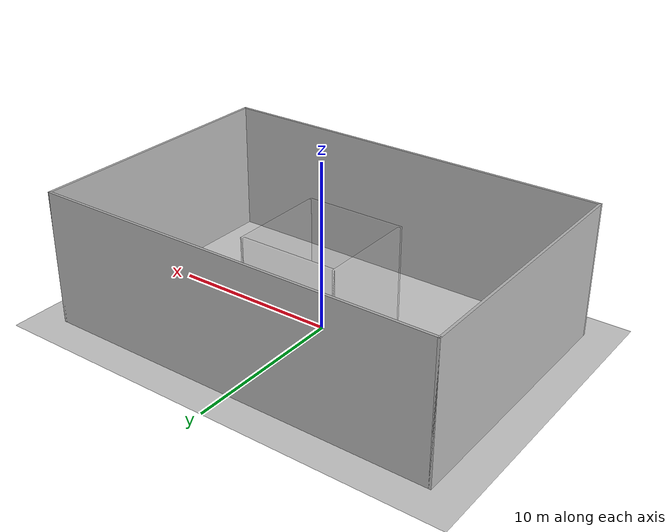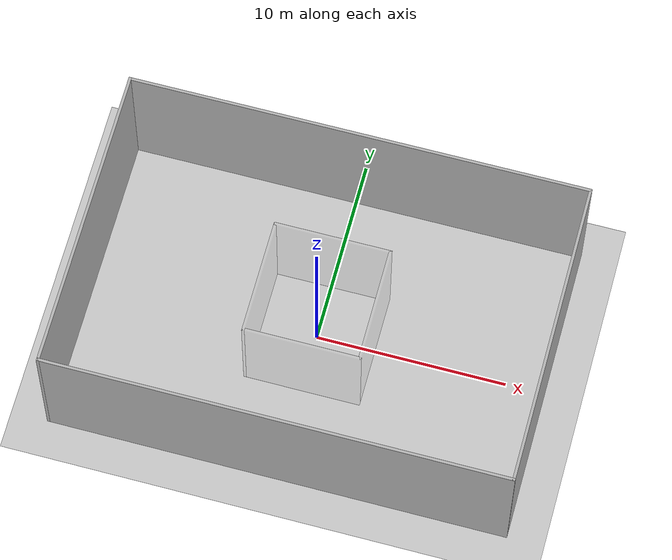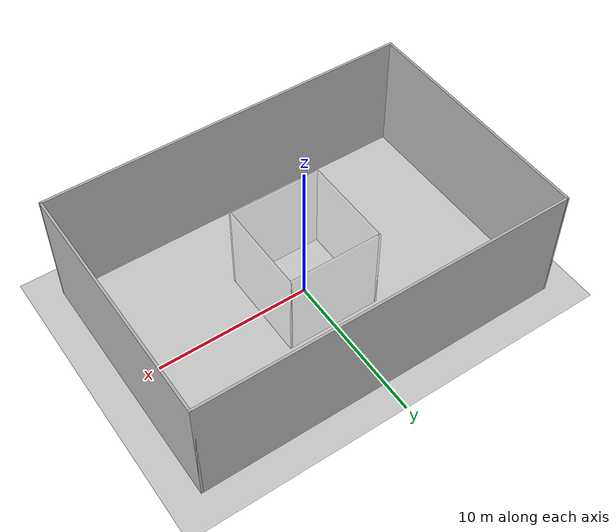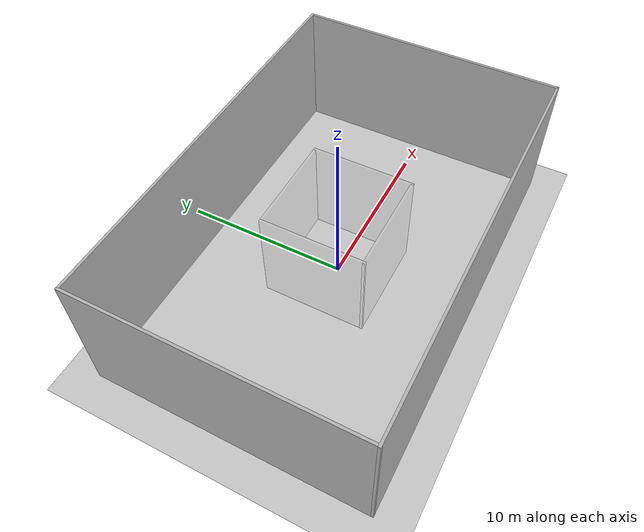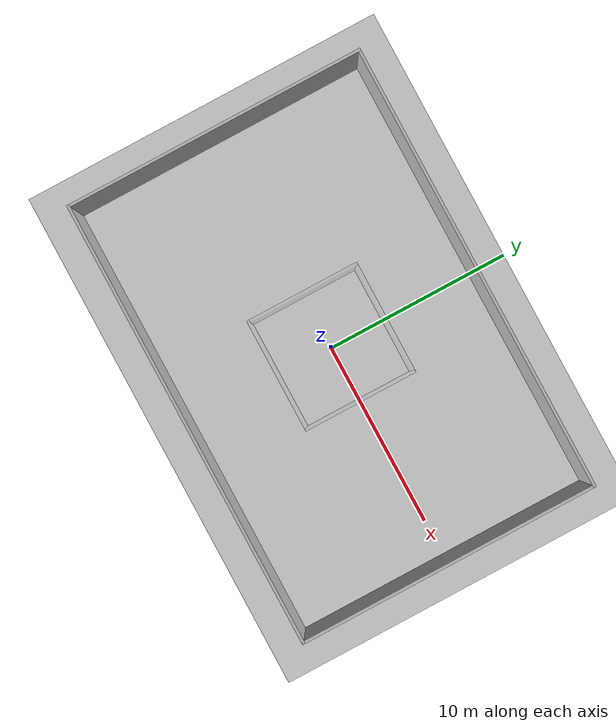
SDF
<?xml version="1.0" ?>
<sdf version='1.6'>
  <world name='dvp'>
    <include>
      <uri>model://flying_arena_dvp</uri>
      <name>flying_arena_dvp</name>
      <pose>0 0 0 0 0 0</pose>
    </include>
    <light name='sun' type='directional'>
      <cast_shadows>1</cast_shadows>
      <pose frame='world'>0 0 10 0 -0 0</pose>
      <diffuse>0.7 0.7 0.7 1</diffuse>
      <specular>0.2 0.2 0.2 1</specular>
      <attenuation>
        <range>1000</range>
        <constant>0.9</constant>
        <linear>0.01</linear>
        <quadratic>0.001</quadratic>
      </attenuation>
      <direction>0.1 0.1 -0.9</direction>
    </light>
    <gravity>0 0 -9.8</gravity>
    <magnetic_field>6e-06 2.3e-05 -4.2e-05</magnetic_field>
    <atmosphere type='adiabatic'/>
    <physics name='default_physics' default='0' type='ode'>
      <ode>
        <solver>
          <type>quick</type>
          <iters>10</iters>
          <sor>1.3</sor>
          <use_dynamic_moi_rescaling>0</use_dynamic_moi_rescaling>
        </solver>
        <constraints>
          <cfm>0</cfm>
          <erp>0.2</erp>
          <contact_max_correcting_vel>100</contact_max_correcting_vel>
          <contact_surface_layer>0.001</contact_surface_layer>
        </constraints>
      </ode>
      <max_step_size>0.004</max_step_size>
      <real_time_factor>1</real_time_factor>
      <real_time_update_rate>250</real_time_update_rate>
    </physics>
    <scene>
      <ambient>0.4 0.4 0.4 1</ambient>
      <background>0.7 0.7 0.7 1</background>
      <shadows>1</shadows>
      <grid>0</grid>
      <origin_visual>0</origin_visual>
    </scene>
    <spherical_coordinates>
      <surface_model>EARTH_WGS84</surface_model>
      <latitude_deg>-27.416142</latitude_deg>
      <longitude_deg>153.105382</longitude_deg>
      <elevation>68</elevation>
      <heading_deg>0</heading_deg>
    </spherical_coordinates>
    <gui fullscreen='0'>
      <camera name='user_camera'>
        <pose frame=''>-6.22181 0.07427 5.33499 0 0.57 0</pose>
        <view_controller>orbit</view_controller>
        <projection_type>perspective</projection_type>
      </camera>
    </gui>
    <audio>
      <device>default</device>
    </audio>
  </world>
</sdf>

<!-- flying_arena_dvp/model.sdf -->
<!-- To change the values to be netted or not, please switch materials between /ImageNetX and /ImageX
in lines 132 ff.  -->
<sdf version='1.6'>
  <model name='flying_arena_dvp'>
    <pose frame=''>0 0 0 0 -0 0</pose>
    <static>1</static>
    <!-- Grey Ground Plane -->
    <link name="Ground">
      <collision name="collision">
        <geometry>
          <plane>
            <normal>0 0 1</normal>
            <size>28 20</size>
          </plane>
        </geometry>
        <surface>
          <friction>
            <ode>
              <mu>100</mu>
              <mu2>50</mu2>
            </ode>
          </friction>
        </surface>
      </collision>
      <visual name="visual">
        <cast_shadows>false</cast_shadows>
        <geometry>
          <plane>
            <normal>0 0 1</normal>
            <size>28 20</size>
          </plane>
        </geometry>
        <material>
          <script>
            <uri>model://flying_arena_dvp/materials/scripts</uri>
            <uri>model://flying_arena_dvp/materials/textures</uri>
            <name>DvP/Floor</name>
          </script>
        </material>
      </visual>
    </link>
    <!-- Beginning of Inner Wall Section - Transparent Walls -->
    <link name='Inner_Wall_0'>
      <collision name='Inner_Wall_0_Collision'>
        <geometry>
          <box>
            <size>6.15 0.15 6</size>
          </box>
        </geometry>
        <pose frame=''>0 0 3 0 -0 0</pose>
      </collision>
      <visual name='Inner_Wall_0_Visual'>
        <pose frame=''>0 0 3 0 -0 0</pose>
        <cast_shadows>false</cast_shadows>
        <geometry>
          <box>
            <size>6.15 0.15 6</size>
          </box>
        </geometry>
        <cast_shadows>0</cast_shadows>
        <transparency>0.9</transparency>
      </visual>
      <pose frame=''>-3 0 0 0 -0 1.5708</pose>
    </link>
    <link name='Inner_Wall_1'>
      <collision name='Inner_Wall_1_Collision'>
        <geometry>
          <box>
            <size>6.15 0.15 6</size>
          </box>
        </geometry>
        <pose frame=''>0 0 3 0 -0 0</pose>
      </collision>
      <visual name='Inner_Wall_1_Visual'>
        <pose frame=''>0 0 3 0 -0 0</pose>
        <cast_shadows>false</cast_shadows>
        <geometry>
          <box>
            <size>6.15 0.15 6</size>
          </box>
        </geometry>
        <cast_shadows>0</cast_shadows>
        <transparency>0.9</transparency>
      </visual>
      <pose frame=''>0 3 0 0 -0 0</pose>
    </link>
    <link name='Inner_Wall_2'>
      <collision name='Inner_Wall_2_Collision'>
        <geometry>
          <box>
            <size>6.15 0.15 6</size>
          </box>
        </geometry>
        <pose frame=''>0 0 3 0 -0 0</pose>
      </collision>
      <visual name='Inner_Wall_2_Visual'>
        <cast_shadows>false</cast_shadows>
        <pose frame=''>0 0 3 0 -0 0</pose>
        <geometry>
          <box>
            <size>6.15 0.15 6</size>
          </box>
        </geometry>
        <cast_shadows>0</cast_shadows>
        <transparency>0.9</transparency>
      </visual>
      <pose frame=''>3 0 0 0 0 -1.5708</pose>
    </link>
    <link name='Inner_Wall_3'>
      <collision name='Inner_Wall_3_Collision'>
        <geometry>
          <box>
            <size>6.15 0.15 6</size>
          </box>
        </geometry>
        <pose frame=''>0 0 3 0 -0 0</pose>
      </collision>
      <visual name='Inner_Wall_3_Visual'>
        <cast_shadows>false</cast_shadows>
        <pose frame=''>0 0 3 0 -0 0</pose>
        <geometry>
          <box>
            <size>6.15 0.15 6</size>
          </box>
        </geometry>
        <cast_shadows>0</cast_shadows>
        <transparency>0.9</transparency>
      </visual>
      <pose frame=''>0 -3 0 0 -0 3.14159</pose>
    </link>
    <!-- End of Inner Wall Section, Beginning Outer Walls Section -->
    <link name='Outer_Wall_0'>
      <collision name='Outer_Wall_0_Collision'>
        <geometry>
          <box>
            <size>24.15 0.15 8</size>
          </box>
        </geometry>
        <pose frame=''>0 0 4 0 -0 0</pose>
      </collision>
      <visual name='Outer_Wall_0_Visual'>
        <pose frame=''>0 0 4 0 -0 0</pose>
        <geometry>
          <box>
            <size>24.15 0.15 8</size>
          </box>
        </geometry>
        <material>
          <!-- Changed Values here -->
          <script>
            <uri>model://flying_arena_dvp/materials/scripts</uri>
            <uri>model://flying_arena_dvp/materials/textures</uri>
            <name>DvP/ImageNetTwo</name>
          </script>
        </material>
        <cast_shadows>0</cast_shadows>
      </visual>
      <pose frame=''>0 8 0 0 -0 0</pose>
    </link>
    <link name='Outer_Wall_1'>
      <collision name='Outer_Wall_1_Collision'>
        <geometry>
          <box>
            <size>16.15 0.15 8</size>
          </box>
        </geometry>
        <pose frame=''>0 0 4 0 -0 0</pose>
      </collision>
      <visual name='Outer_Wall_1_Visual'>
        <pose frame=''>0 0 4 0 -0 0</pose>
        <geometry>
          <box>
            <size>16.15 0.15 8</size>
          </box>
        </geometry>
        <material>
          <!-- Changed Values here -->
          <script>
            <uri>model://flying_arena_dvp/materials/scripts</uri>
            <uri>model://flying_arena_dvp/materials/textures</uri>
            <name>DvP/ImageNetThree</name>
          </script>
        </material>
        <cast_shadows>0</cast_shadows>
      </visual>
      <pose frame=''>12 0 0 0 0 -1.5708</pose>
    </link>
    <link name='Outer_Wall_2'>
      <collision name='Outer_Wall_2_Collision'>
        <geometry>
          <box>
            <size>24.15 0.15 8</size>
          </box>
        </geometry>
        <pose frame=''>0 0 4 0 -0 0</pose>
      </collision>
      <visual name='Outer_Wall_2_Visual'>
        <pose frame=''>0 0 4 0 -0 0</pose>
        <geometry>
          <box>
            <size>24.15 0.15 8</size>
          </box>
        </geometry>
        <material>
          <!-- Changed Values here -->
          <script>
            <uri>model://flying_arena_dvp/materials/scripts</uri>
            <uri>model://flying_arena_dvp/materials/textures</uri>
            <name>DvP/ImageNetFour</name>
          </script>
        </material>
        <cast_shadows>0</cast_shadows>
      </visual>
      <pose frame=''>0 -8 0 0 -0 3.14159</pose>
    </link>
    <link name='Outer_Wall_3'>
      <collision name='Outer_Wall_3_Collision'>
        <geometry>
          <box>
            <size>16.15 0.15 8</size>
          </box>
        </geometry>
        <pose frame=''>0 0 4 0 -0 0</pose>
      </collision>
      <visual name='Outer_Wall_3_Visual'>
        <pose frame=''>0 0 4 0 -0 0</pose>
        <geometry>
          <box>
            <size>16.15 0.15 8</size>
          </box>
        </geometry>
        <material>
          <!-- Changed Values here -->
          <script>
            <uri>model://flying_arena_dvp/materials/scripts</uri>
            <uri>model://flying_arena_dvp/materials/textures</uri>
            <name>DvP/ImageNetOne</name>
          </script>
        </material>
        <cast_shadows>0</cast_shadows>
      </visual>
      <pose frame=''>-12 0 0 0 -0 1.5708</pose>
    </link>
  </model>
</sdf>
